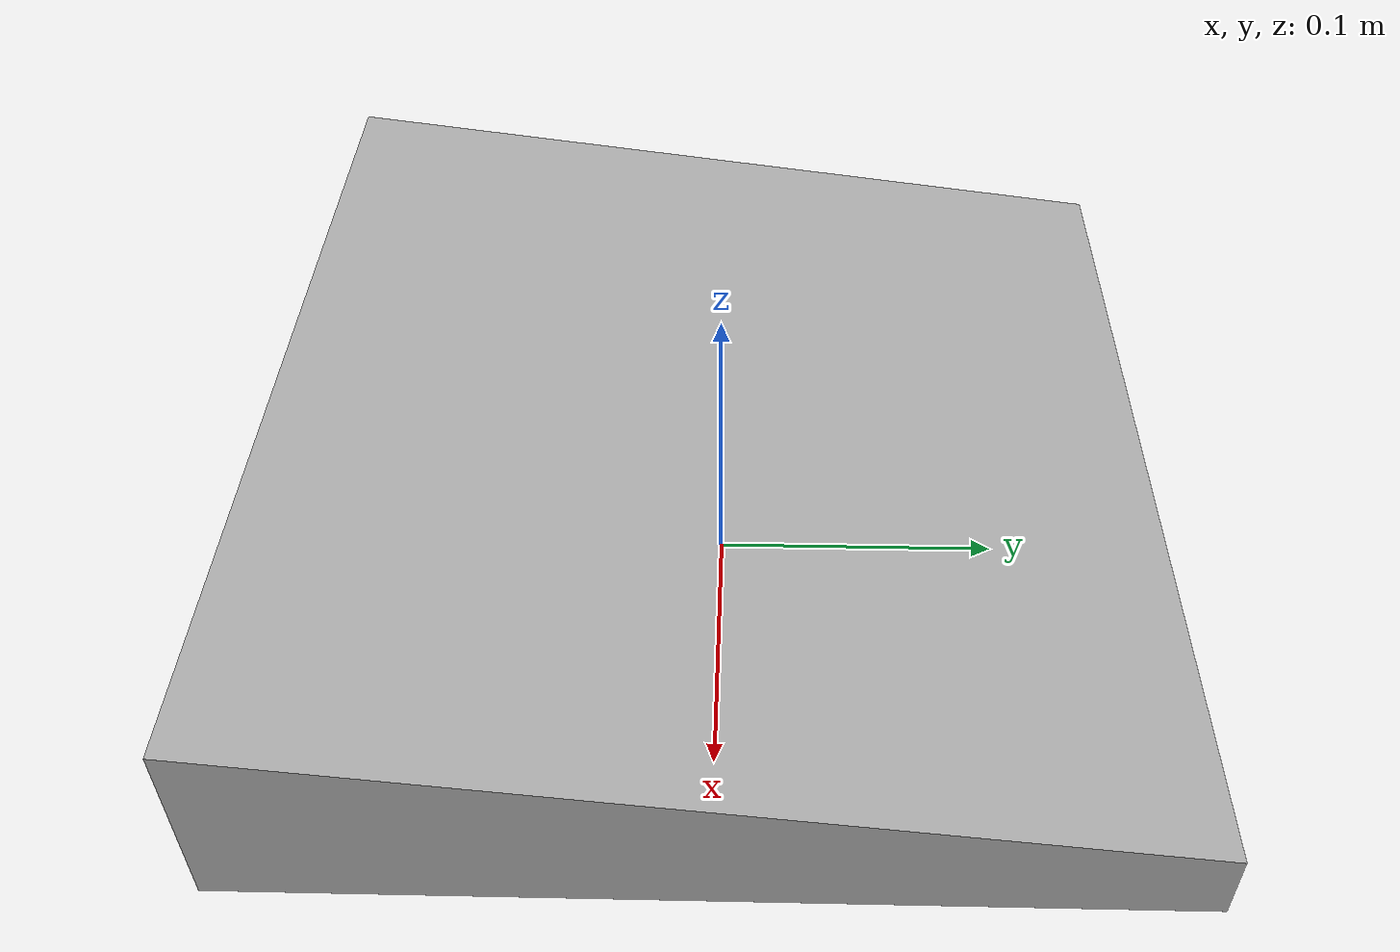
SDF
<?xml version="1.0" ?>
<sdf version="1.4">
  <model name="diag_Y_positive_10_lifted_size_30">
    <link name="link">
      <pose>0 0 0 0 0 0</pose>
      <collision name="collision">
        <geometry>
          <mesh>
            <uri>model://diag_Y_positive_10_lifted_size_30/meshes/diag_Y_positive_10_degree_slope_lifted_size_30.stl</uri>
            <scale>0.00999 0.00999 0.00999</scale>
          </mesh>
        </geometry>
      </collision>
      <visual name="visual">
        <geometry>
          <mesh>
            <uri>model://diag_Y_positive_10_lifted_size_30/meshes/diag_Y_positive_10_degree_slope_lifted_size_30.stl</uri>
            <scale>0.00999 0.00999 0.00999</scale>
          </mesh>
        </geometry>
      </visual>
    </link>
  </model>
</sdf>
